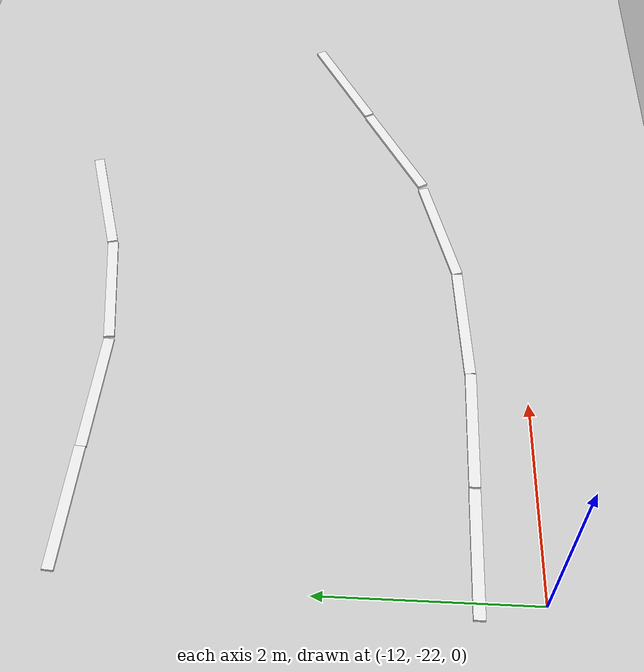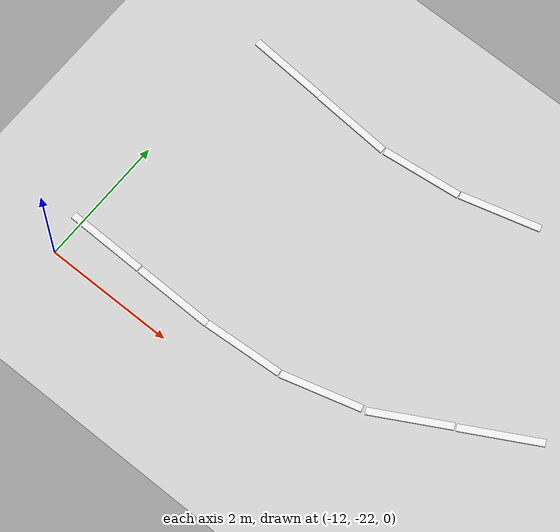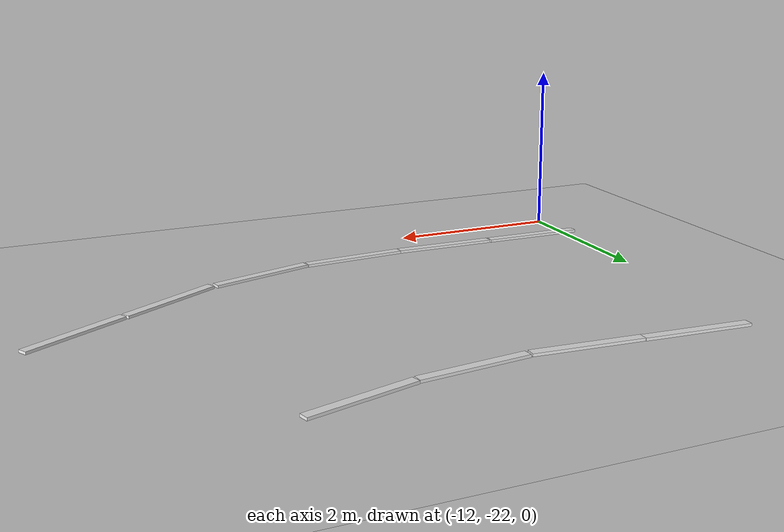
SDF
<sdf version="1.7">
 <world name="default">
  <model name="ground_plane">
   <static>1</static>
   <link name="link">
    <collision name="collision">
     <geometry><plane><normal>0 0 1</normal><size>100 100</size></plane></geometry>
     <surface><friction><ode><mu>100</mu><mu2>50</mu2></ode></friction></surface>
    </collision>
    <visual name="visual">
     <cast_shadows>0</cast_shadows>
     <geometry><plane><normal>0 0 1</normal><size>100 100</size></plane></geometry>
     <material>
      <script><uri>file://media/materials/scripts/gazebo.material</uri><name>Gazebo/Grey</name></script>
     </material>
    </visual>
   </link>
  </model>
  <model name="road_way_1_clone_clone_clone_0_clone_0">
   <link name="link">
    <inertial>
     <mass>1</mass>
     <inertia>
      <ixx>0.166667</ixx>
      <ixy>0</ixy>
      <ixz>0</ixz>
      <iyy>0.166667</iyy>
      <iyz>0</iyz>
      <izz>0.166667</izz>
     </inertia>
    </inertial>
    <visual name="visual">
     <geometry><box><size>0.106644 1.22348 0.03129</size></box></geometry>
     <material>
      <script><name>Gazebo/White</name><uri>file://media/materials/scripts/gazebo.material</uri></script>
      <shader type="pixel"><normal_map>__default__</normal_map></shader>
      <ambient>1 1 1 1</ambient>
      <diffuse>1 1 1 1</diffuse>
      <specular>0 0 0 1</specular>
      <emissive>0 0 0 1</emissive>
     </material>
    </visual>
    <collision name="collision">
     <geometry><box><size>0.10644 1.22348 0.03129</size></box></geometry>
     <surface>
      <friction>
       <ode><mu>1</mu><mu2>1</mu2><fdir1>0 0 0</fdir1><slip1>0</slip1><slip2>0</slip2></ode>
       <torsional>
        <coefficient>1</coefficient>
        <patch_radius>0</patch_radius>
        <surface_radius>0</surface_radius>
        <use_patch_radius>1</use_patch_radius>
        <ode><slip>0</slip></ode>
       </torsional>
      </friction>
      <bounce><restitution_coefficient>0</restitution_coefficient><threshold>1e+06</threshold></bounce>
      <contact>
       <collide_without_contact>0</collide_without_contact>
       <collide_without_contact_bitmask>1</collide_without_contact_bitmask>
       <collide_bitmask>1</collide_bitmask>
       <ode>
        <soft_cfm>0</soft_cfm>
        <soft_erp>0.2</soft_erp>
        <kp>1e+13</kp>
        <kd>1</kd>
        <max_vel>0.01</max_vel>
        <min_depth>0</min_depth>
       </ode>
       <bullet>
        <split_impulse>1</split_impulse>
        <split_impulse_penetration_threshold>-0.01</split_impulse_penetration_threshold>
        <soft_cfm>0</soft_cfm>
        <soft_erp>0.2</soft_erp>
        <kp>1e+13</kp>
        <kd>1</kd>
       </bullet>
      </contact>
     </surface>
    </collision>
   </link>
   <static>0</static>
   <pose>-11.5456 -21.4312 0.015638 1.1e-05 -0 1.5535</pose>
  </model>
  <model name="road_way_1_clone_clone_clone_0_clone_0_clone">
   <link name="link">
    <inertial>
     <mass>1</mass>
     <inertia>
      <ixx>0.166667</ixx>
      <ixy>0</ixy>
      <ixz>0</ixz>
      <iyy>0.166667</iyy>
      <iyz>0</iyz>
      <izz>0.166667</izz>
     </inertia>
    </inertial>
    <visual name="visual">
     <geometry><box><size>0.106644 1.22348 0.03129</size></box></geometry>
     <material>
      <script><name>Gazebo/White</name><uri>file://media/materials/scripts/gazebo.material</uri></script>
      <shader type="pixel"><normal_map>__default__</normal_map></shader>
      <ambient>1 1 1 1</ambient>
      <diffuse>1 1 1 1</diffuse>
      <specular>0 0 0 1</specular>
      <emissive>0 0 0 1</emissive>
     </material>
    </visual>
    <collision name="collision">
     <geometry><box><size>0.10644 1.22348 0.03129</size></box></geometry>
     <surface>
      <friction>
       <ode><mu>1</mu><mu2>1</mu2><fdir1>0 0 0</fdir1><slip1>0</slip1><slip2>0</slip2></ode>
       <torsional>
        <coefficient>1</coefficient>
        <patch_radius>0</patch_radius>
        <surface_radius>0</surface_radius>
        <use_patch_radius>1</use_patch_radius>
        <ode><slip>0</slip></ode>
       </torsional>
      </friction>
      <bounce><restitution_coefficient>0</restitution_coefficient><threshold>1e+06</threshold></bounce>
      <contact>
       <collide_without_contact>0</collide_without_contact>
       <collide_without_contact_bitmask>1</collide_without_contact_bitmask>
       <collide_bitmask>1</collide_bitmask>
       <ode>
        <soft_cfm>0</soft_cfm>
        <soft_erp>0.2</soft_erp>
        <kp>1e+13</kp>
        <kd>1</kd>
        <max_vel>0.01</max_vel>
        <min_depth>0</min_depth>
       </ode>
       <bullet>
        <split_impulse>1</split_impulse>
        <split_impulse_penetration_threshold>-0.01</split_impulse_penetration_threshold>
        <soft_cfm>0</soft_cfm>
        <soft_erp>0.2</soft_erp>
        <kp>1e+13</kp>
        <kd>1</kd>
       </bullet>
      </contact>
     </surface>
    </collision>
   </link>
   <static>0</static>
   <pose>-11.2728 -17.7836 0.015638 1.1e-05 -0 1.50141</pose>
  </model>
  <model name="road_way_1_clone_clone_clone_0_clone_0_clone_0">
   <link name="link">
    <inertial>
     <mass>1</mass>
     <inertia>
      <ixx>0.166667</ixx>
      <ixy>0</ixy>
      <ixz>0</ixz>
      <iyy>0.166667</iyy>
      <iyz>0</iyz>
      <izz>0.166667</izz>
     </inertia>
    </inertial>
    <visual name="visual">
     <geometry><box><size>0.106644 1.22348 0.03129</size></box></geometry>
     <material>
      <script><name>Gazebo/White</name><uri>file://media/materials/scripts/gazebo.material</uri></script>
      <shader type="pixel"><normal_map>__default__</normal_map></shader>
      <ambient>1 1 1 1</ambient>
      <diffuse>1 1 1 1</diffuse>
      <specular>0 0 0 1</specular>
      <emissive>0 0 0 1</emissive>
     </material>
    </visual>
    <collision name="collision">
     <geometry><box><size>0.10644 1.22348 0.03129</size></box></geometry>
     <surface>
      <friction>
       <ode><mu>1</mu><mu2>1</mu2><fdir1>0 0 0</fdir1><slip1>0</slip1><slip2>0</slip2></ode>
       <torsional>
        <coefficient>1</coefficient>
        <patch_radius>0</patch_radius>
        <surface_radius>0</surface_radius>
        <use_patch_radius>1</use_patch_radius>
        <ode><slip>0</slip></ode>
       </torsional>
      </friction>
      <bounce><restitution_coefficient>0</restitution_coefficient><threshold>1e+06</threshold></bounce>
      <contact>
       <collide_without_contact>0</collide_without_contact>
       <collide_without_contact_bitmask>1</collide_without_contact_bitmask>
       <collide_bitmask>1</collide_bitmask>
       <ode>
        <soft_cfm>0</soft_cfm>
        <soft_erp>0.2</soft_erp>
        <kp>1e+13</kp>
        <kd>1</kd>
        <max_vel>0.01</max_vel>
        <min_depth>0</min_depth>
       </ode>
       <bullet>
        <split_impulse>1</split_impulse>
        <split_impulse_penetration_threshold>-0.01</split_impulse_penetration_threshold>
        <soft_cfm>0</soft_cfm>
        <soft_erp>0.2</soft_erp>
        <kp>1e+13</kp>
        <kd>1</kd>
       </bullet>
      </contact>
     </surface>
    </collision>
   </link>
   <static>0</static>
   <pose>-10.3065 -21.4548 0.015638 -1.1e-05 -0 1.55347</pose>
  </model>
  <model name="road_way_1_clone_clone_clone_0_clone_0_clone_1">
   <link name="link">
    <inertial>
     <mass>1</mass>
     <inertia>
      <ixx>0.166667</ixx>
      <ixy>0</ixy>
      <ixz>0</ixz>
      <iyy>0.166667</iyy>
      <iyz>0</iyz>
      <izz>0.166667</izz>
     </inertia>
    </inertial>
    <visual name="visual">
     <geometry><box><size>0.106644 1.22348 0.03129</size></box></geometry>
     <material>
      <script><name>Gazebo/White</name><uri>file://media/materials/scripts/gazebo.material</uri></script>
      <shader type="pixel"><normal_map>__default__</normal_map></shader>
      <ambient>1 1 1 1</ambient>
      <diffuse>1 1 1 1</diffuse>
      <specular>0 0 0 1</specular>
      <emissive>0 0 0 1</emissive>
     </material>
    </visual>
    <collision name="collision">
     <geometry><box><size>0.10644 1.22348 0.03129</size></box></geometry>
     <surface>
      <friction>
       <ode><mu>1</mu><mu2>1</mu2><fdir1>0 0 0</fdir1><slip1>0</slip1><slip2>0</slip2></ode>
       <torsional>
        <coefficient>1</coefficient>
        <patch_radius>0</patch_radius>
        <surface_radius>0</surface_radius>
        <use_patch_radius>1</use_patch_radius>
        <ode><slip>0</slip></ode>
       </torsional>
      </friction>
      <bounce><restitution_coefficient>0</restitution_coefficient><threshold>1e+06</threshold></bounce>
      <contact>
       <collide_without_contact>0</collide_without_contact>
       <collide_without_contact_bitmask>1</collide_without_contact_bitmask>
       <collide_bitmask>1</collide_bitmask>
       <ode>
        <soft_cfm>0</soft_cfm>
        <soft_erp>0.2</soft_erp>
        <kp>1e+13</kp>
        <kd>1</kd>
        <max_vel>0.01</max_vel>
        <min_depth>0</min_depth>
       </ode>
       <bullet>
        <split_impulse>1</split_impulse>
        <split_impulse_penetration_threshold>-0.01</split_impulse_penetration_threshold>
        <soft_cfm>0</soft_cfm>
        <soft_erp>0.2</soft_erp>
        <kp>1e+13</kp>
        <kd>1</kd>
       </bullet>
      </contact>
     </surface>
    </collision>
   </link>
   <static>0</static>
   <pose>-9.08024 -21.4233 0.015638 1.1e-05 -0 1.63408</pose>
  </model>
  <model name="road_way_1_clone_clone_clone_0_clone_0_clone_2">
   <link name="link">
    <inertial>
     <mass>1</mass>
     <inertia>
      <ixx>0.166667</ixx>
      <ixy>0</ixy>
      <ixz>0</ixz>
      <iyy>0.166667</iyy>
      <iyz>0</iyz>
      <izz>0.166667</izz>
     </inertia>
    </inertial>
    <visual name="visual">
     <geometry><box><size>0.106644 1.22348 0.03129</size></box></geometry>
     <material>
      <script><name>Gazebo/White</name><uri>file://media/materials/scripts/gazebo.material</uri></script>
      <shader type="pixel"><normal_map>__default__</normal_map></shader>
      <ambient>1 1 1 1</ambient>
      <diffuse>1 1 1 1</diffuse>
      <specular>0 0 0 1</specular>
      <emissive>0 0 0 1</emissive>
     </material>
    </visual>
    <collision name="collision">
     <geometry><box><size>0.10644 1.22348 0.03129</size></box></geometry>
     <surface>
      <friction>
       <ode><mu>1</mu><mu2>1</mu2><fdir1>0 0 0</fdir1><slip1>0</slip1><slip2>0</slip2></ode>
       <torsional>
        <coefficient>1</coefficient>
        <patch_radius>0</patch_radius>
        <surface_radius>0</surface_radius>
        <use_patch_radius>1</use_patch_radius>
        <ode><slip>0</slip></ode>
       </torsional>
      </friction>
      <bounce><restitution_coefficient>0</restitution_coefficient><threshold>1e+06</threshold></bounce>
      <contact>
       <collide_without_contact>0</collide_without_contact>
       <collide_without_contact_bitmask>1</collide_without_contact_bitmask>
       <collide_bitmask>1</collide_bitmask>
       <ode>
        <soft_cfm>0</soft_cfm>
        <soft_erp>0.2</soft_erp>
        <kp>1e+13</kp>
        <kd>1</kd>
        <max_vel>0.01</max_vel>
        <min_depth>0</min_depth>
       </ode>
       <bullet>
        <split_impulse>1</split_impulse>
        <split_impulse_penetration_threshold>-0.01</split_impulse_penetration_threshold>
        <soft_cfm>0</soft_cfm>
        <soft_erp>0.2</soft_erp>
        <kp>1e+13</kp>
        <kd>1</kd>
       </bullet>
      </contact>
     </surface>
    </collision>
   </link>
   <static>0</static>
   <pose>-7.86774 -21.2259 0.015638 -1.1e-05 -0 1.84017</pose>
  </model>
  <model name="road_way_1_clone_clone_clone_0_clone_0_clone_clone">
   <link name="link">
    <inertial>
     <mass>1</mass>
     <inertia>
      <ixx>0.166667</ixx>
      <ixy>0</ixy>
      <ixz>0</ixz>
      <iyy>0.166667</iyy>
      <iyz>0</iyz>
      <izz>0.166667</izz>
     </inertia>
    </inertial>
    <visual name="visual">
     <geometry><box><size>0.106644 1.22348 0.03129</size></box></geometry>
     <material>
      <script><name>Gazebo/White</name><uri>file://media/materials/scripts/gazebo.material</uri></script>
      <shader type="pixel"><normal_map>__default__</normal_map></shader>
      <ambient>1 1 1 1</ambient>
      <diffuse>1 1 1 1</diffuse>
      <specular>0 0 0 1</specular>
      <emissive>0 0 0 1</emissive>
     </material>
    </visual>
    <collision name="collision">
     <geometry><box><size>0.10644 1.22348 0.03129</size></box></geometry>
     <surface>
      <friction>
       <ode><mu>1</mu><mu2>1</mu2><fdir1>0 0 0</fdir1><slip1>0</slip1><slip2>0</slip2></ode>
       <torsional>
        <coefficient>1</coefficient>
        <patch_radius>0</patch_radius>
        <surface_radius>0</surface_radius>
        <use_patch_radius>1</use_patch_radius>
        <ode><slip>0</slip></ode>
       </torsional>
      </friction>
      <bounce><restitution_coefficient>0</restitution_coefficient><threshold>1e+06</threshold></bounce>
      <contact>
       <collide_without_contact>0</collide_without_contact>
       <collide_without_contact_bitmask>1</collide_without_contact_bitmask>
       <collide_bitmask>1</collide_bitmask>
       <ode>
        <soft_cfm>0</soft_cfm>
        <soft_erp>0.2</soft_erp>
        <kp>1e+13</kp>
        <kd>1</kd>
        <max_vel>0.01</max_vel>
        <min_depth>0</min_depth>
       </ode>
       <bullet>
        <split_impulse>1</split_impulse>
        <split_impulse_penetration_threshold>-0.01</split_impulse_penetration_threshold>
        <soft_cfm>0</soft_cfm>
        <soft_erp>0.2</soft_erp>
        <kp>1e+13</kp>
        <kd>1</kd>
       </bullet>
      </contact>
     </surface>
    </collision>
   </link>
   <static>0</static>
   <pose>-10.0527 -17.8745 0.015638 -1.1e-05 0 1.50112</pose>
  </model>
  <model name="road_way_1_clone_clone_clone_0_clone_0_clone_clone_0">
   <link name="link">
    <inertial>
     <mass>1</mass>
     <inertia>
      <ixx>0.166667</ixx>
      <ixy>0</ixy>
      <ixz>0</ixz>
      <iyy>0.166667</iyy>
      <iyz>0</iyz>
      <izz>0.166667</izz>
     </inertia>
    </inertial>
    <visual name="visual">
     <geometry><box><size>0.106644 1.22348 0.03129</size></box></geometry>
     <material>
      <script><name>Gazebo/White</name><uri>file://media/materials/scripts/gazebo.material</uri></script>
      <shader type="pixel"><normal_map>__default__</normal_map></shader>
      <ambient>1 1 1 1</ambient>
      <diffuse>1 1 1 1</diffuse>
      <specular>0 0 0 1</specular>
      <emissive>0 0 0 1</emissive>
     </material>
    </visual>
    <collision name="collision">
     <geometry><box><size>0.10644 1.22348 0.03129</size></box></geometry>
     <surface>
      <friction>
       <ode><mu>1</mu><mu2>1</mu2><fdir1>0 0 0</fdir1><slip1>0</slip1><slip2>0</slip2></ode>
       <torsional>
        <coefficient>1</coefficient>
        <patch_radius>0</patch_radius>
        <surface_radius>0</surface_radius>
        <use_patch_radius>1</use_patch_radius>
        <ode><slip>0</slip></ode>
       </torsional>
      </friction>
      <bounce><restitution_coefficient>0</restitution_coefficient><threshold>1e+06</threshold></bounce>
      <contact>
       <collide_without_contact>0</collide_without_contact>
       <collide_without_contact_bitmask>1</collide_without_contact_bitmask>
       <collide_bitmask>1</collide_bitmask>
       <ode>
        <soft_cfm>0</soft_cfm>
        <soft_erp>0.2</soft_erp>
        <kp>1e+13</kp>
        <kd>1</kd>
        <max_vel>0.01</max_vel>
        <min_depth>0</min_depth>
       </ode>
       <bullet>
        <split_impulse>1</split_impulse>
        <split_impulse_penetration_threshold>-0.01</split_impulse_penetration_threshold>
        <soft_cfm>0</soft_cfm>
        <soft_erp>0.2</soft_erp>
        <kp>1e+13</kp>
        <kd>1</kd>
       </bullet>
      </contact>
     </surface>
    </collision>
   </link>
   <static>0</static>
   <pose>-8.80671 -17.845 0.015638 1.1e-05 -0 1.68021</pose>
  </model>
  <model name="road_way_1_clone_clone_clone_0_clone_0_clone_clone_1">
   <link name="link">
    <inertial>
     <mass>1</mass>
     <inertia>
      <ixx>0.166667</ixx>
      <ixy>0</ixy>
      <ixz>0</ixz>
      <iyy>0.166667</iyy>
      <iyz>0</iyz>
      <izz>0.166667</izz>
     </inertia>
    </inertial>
    <visual name="visual">
     <geometry><box><size>0.106644 1.22348 0.03129</size></box></geometry>
     <material>
      <script><name>Gazebo/White</name><uri>file://media/materials/scripts/gazebo.material</uri></script>
      <shader type="pixel"><normal_map>__default__</normal_map></shader>
      <ambient>1 1 1 1</ambient>
      <diffuse>1 1 1 1</diffuse>
      <specular>0 0 0 1</specular>
      <emissive>0 0 0 1</emissive>
     </material>
    </visual>
    <collision name="collision">
     <geometry><box><size>0.10644 1.22348 0.03129</size></box></geometry>
     <surface>
      <friction>
       <ode><mu>1</mu><mu2>1</mu2><fdir1>0 0 0</fdir1><slip1>0</slip1><slip2>0</slip2></ode>
       <torsional>
        <coefficient>1</coefficient>
        <patch_radius>0</patch_radius>
        <surface_radius>0</surface_radius>
        <use_patch_radius>1</use_patch_radius>
        <ode><slip>0</slip></ode>
       </torsional>
      </friction>
      <bounce><restitution_coefficient>0</restitution_coefficient><threshold>1e+06</threshold></bounce>
      <contact>
       <collide_without_contact>0</collide_without_contact>
       <collide_without_contact_bitmask>1</collide_without_contact_bitmask>
       <collide_bitmask>1</collide_bitmask>
       <ode>
        <soft_cfm>0</soft_cfm>
        <soft_erp>0.2</soft_erp>
        <kp>1e+13</kp>
        <kd>1</kd>
        <max_vel>0.01</max_vel>
        <min_depth>0</min_depth>
       </ode>
       <bullet>
        <split_impulse>1</split_impulse>
        <split_impulse_penetration_threshold>-0.01</split_impulse_penetration_threshold>
        <soft_cfm>0</soft_cfm>
        <soft_erp>0.2</soft_erp>
        <kp>1e+13</kp>
        <kd>1</kd>
       </bullet>
      </contact>
     </surface>
    </collision>
   </link>
   <static>0</static>
   <pose>-6.69302 -20.7671 0.015638 1.1e-05 -0 2.07559</pose>
  </model>
  <model name="road_way_1_clone_clone_clone_0_clone_0_clone_clone_0_clone">
   <link name="link">
    <inertial>
     <mass>1</mass>
     <inertia>
      <ixx>0.166667</ixx>
      <ixy>0</ixy>
      <ixz>0</ixz>
      <iyy>0.166667</iyy>
      <iyz>0</iyz>
      <izz>0.166667</izz>
     </inertia>
    </inertial>
    <visual name="visual">
     <geometry><box><size>0.106644 1.22348 0.03129</size></box></geometry>
     <material>
      <script><name>Gazebo/White</name><uri>file://media/materials/scripts/gazebo.material</uri></script>
      <shader type="pixel"><normal_map>__default__</normal_map></shader>
      <ambient>1 1 1 1</ambient>
      <diffuse>1 1 1 1</diffuse>
      <specular>0 0 0 1</specular>
      <emissive>0 0 0 1</emissive>
     </material>
    </visual>
    <collision name="collision">
     <geometry><box><size>0.10644 1.22348 0.03129</size></box></geometry>
     <surface>
      <friction>
       <ode><mu>1</mu><mu2>1</mu2><fdir1>0 0 0</fdir1><slip1>0</slip1><slip2>0</slip2></ode>
       <torsional>
        <coefficient>1</coefficient>
        <patch_radius>0</patch_radius>
        <surface_radius>0</surface_radius>
        <use_patch_radius>1</use_patch_radius>
        <ode><slip>0</slip></ode>
       </torsional>
      </friction>
      <bounce><restitution_coefficient>0</restitution_coefficient><threshold>1e+06</threshold></bounce>
      <contact>
       <collide_without_contact>0</collide_without_contact>
       <collide_without_contact_bitmask>1</collide_without_contact_bitmask>
       <collide_bitmask>1</collide_bitmask>
       <ode>
        <soft_cfm>0</soft_cfm>
        <soft_erp>0.2</soft_erp>
        <kp>1e+13</kp>
        <kd>1</kd>
        <max_vel>0.01</max_vel>
        <min_depth>0</min_depth>
       </ode>
       <bullet>
        <split_impulse>1</split_impulse>
        <split_impulse_penetration_threshold>-0.01</split_impulse_penetration_threshold>
        <soft_cfm>0</soft_cfm>
        <soft_erp>0.2</soft_erp>
        <kp>1e+13</kp>
        <kd>1</kd>
       </bullet>
      </contact>
     </surface>
    </collision>
   </link>
   <static>0</static>
   <pose>-7.59485 -17.6096 0.015638 1.1e-05 -0 1.83447</pose>
  </model>
  <model name="road_way_1_clone_clone_clone_0_clone_0_clone_clone_1_clone">
   <link name="link">
    <inertial>
     <mass>1</mass>
     <inertia>
      <ixx>0.166667</ixx>
      <ixy>0</ixy>
      <ixz>0</ixz>
      <iyy>0.166667</iyy>
      <iyz>0</iyz>
      <izz>0.166667</izz>
     </inertia>
    </inertial>
    <visual name="visual">
     <geometry><box><size>0.106644 1.22348 0.03129</size></box></geometry>
     <material>
      <script><name>Gazebo/White</name><uri>file://media/materials/scripts/gazebo.material</uri></script>
      <shader type="pixel"><normal_map>__default__</normal_map></shader>
      <ambient>1 1 1 1</ambient>
      <diffuse>1 1 1 1</diffuse>
      <specular>0 0 0 1</specular>
      <emissive>0 0 0 1</emissive>
     </material>
    </visual>
    <collision name="collision">
     <geometry><box><size>0.10644 1.22348 0.03129</size></box></geometry>
     <surface>
      <friction>
       <ode><mu>1</mu><mu2>1</mu2><fdir1>0 0 0</fdir1><slip1>0</slip1><slip2>0</slip2></ode>
       <torsional>
        <coefficient>1</coefficient>
        <patch_radius>0</patch_radius>
        <surface_radius>0</surface_radius>
        <use_patch_radius>1</use_patch_radius>
        <ode><slip>0</slip></ode>
       </torsional>
      </friction>
      <bounce><restitution_coefficient>0</restitution_coefficient><threshold>1e+06</threshold></bounce>
      <contact>
       <collide_without_contact>0</collide_without_contact>
       <collide_without_contact_bitmask>1</collide_without_contact_bitmask>
       <collide_bitmask>1</collide_bitmask>
       <ode>
        <soft_cfm>0</soft_cfm>
        <soft_erp>0.2</soft_erp>
        <kp>1e+13</kp>
        <kd>1</kd>
        <max_vel>0.01</max_vel>
        <min_depth>0</min_depth>
       </ode>
       <bullet>
        <split_impulse>1</split_impulse>
        <split_impulse_penetration_threshold>-0.01</split_impulse_penetration_threshold>
        <soft_cfm>0</soft_cfm>
        <soft_erp>0.2</soft_erp>
        <kp>1e+13</kp>
        <kd>1</kd>
       </bullet>
      </contact>
     </surface>
    </collision>
   </link>
   <static>0</static>
   <pose>-5.59882 -20.1721 0.015638 1.1e-05 -0 2.07478</pose>
  </model>
 </world>
</sdf>
